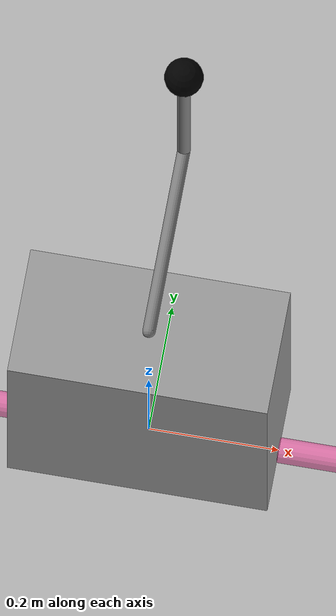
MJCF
<mujoco model="cart_pole">
  <!-- 编译选项：角度使用弧度制 -->
  <compiler angle="radian" coordinate="local" meshdir="."/>

  <!-- 物理选项：重力向下 (沿Z轴负方向) -->
  <option gravity="0 0 -9.81" timestep="0.001" integrator="implicitfast"/>

<asset>
<!--  skybox 直接控制天空  -->
<texture type="skybox" builtin="gradient" rgb1="1 1 1" rgb2="0.6 0.8 1" width="256" height="256"/>
<texture name="plane" type="2d" builtin="checker" rgb1=".1 .1 .1" rgb2=".9 .9 .9" width="512" height="512" mark="cross" markrgb=".8 .8 .8"/>
<material name="plane" reflectance="0.3" texture="plane" texrepeat="1 1" texuniform="true"/>
</asset>

  <!-- 默认属性设置 -->
  <default>
    <!-- 设置关节阻尼，模拟摩擦 -->
    <joint damping="0.001"/>
    <!-- 默认几何体属性 -->
    <geom rgba="0.7 0.7 0.7 1"/>
  </default>

  <!-- 视觉资源 -->
  <visual>
    <headlight ambient="0.4 0.4 0.4" diffuse="0.8 0.8 0.8" specular="0.1 0.1 0.1"/>
    <map znear="0.02"/>
  </visual>

  <worldbody>
    <!-- 地面 -->
    <light pos="0 0 3" dir="0 0 -1" directional="true"/>
    <geom name="floor" pos="0 0 0" size="0 0 .25" type="plane" material="plane" condim="3" friction="0.01 0.01 0.01"/>

    <!-- 导轨视觉辅助线 (可选，为了看清X轴运动轨迹) -->
    <site name="rail" type="capsule" fromto="-500 0 0 500 0 0" size="0.02" rgba="1 0.4 0.7 0.7"/>

    <!-- 小车 (Cart) - 对应质量 M -->
    <!-- pos="0 0 0.1" 是为了让小车刚好浮在地面上方 -->
    <body name="cart" pos="0 0 0.2">
      <!-- 移动关节：沿X轴滑动，代替轮子 -->
      <joint name="slider" type="slide" axis="1 0 0" limited="true" range="-50 50"/>

      <!-- 小车实体：长方体 长0.4 0.2  高0.1-->
      <geom name="cart_geom" type="box" size="0.2 0.1 0.2" rgba="0.6 0.6 0.6 1" mass="0.5"/>
      <body name ="fixed" pos="0 0 0.2">
       <geom name="fixcap" type="capsule" fromto="0 0 0 0 0.3 0" size="0.01" rgba="0.5 0.5 0.5 1" mass="0.01"/>
      <!-- 倒立摆系统 (Pole) -->
      <!-- 安装在小车顶部中心 (0, 0, 0.05) -->
      <body name="pole" pos="0 0.3 0">
        <!-- 旋转关节：绕Y轴旋转 (在XZ平面内摆动) -->
        <joint name="hinge"  type="hinge" axis="0 1 0" damping="0.001" range="-3.14 3.14"/>
        <!-- 连杆 (Rod) - 长度 l -->
        <!-- 使用 fromto 定义起点(关节处)到终点(球心) -->
        <!-- 质量设得很小，符合"连杆质量尽量小"的要求 -->
        <geom name="rod_geom" type="capsule" fromto="0 0 0 0 0 0.3" size="0.01" rgba="0.5 0.5 0.5 1" mass="0.01"/>
        <!-- 质点球 (Mass m) -->
        <!-- 位置在连杆末端 -->
        <body name="mass_sphere" pos="0 0 0.3">
            <geom name="m_geom" type="sphere" size="0.03" rgba="0 0 0 1" mass="0.5"/>
        </body>
        </body>
      </body>
    </body>
  </worldbody>

  <!-- 执行器 (Actuator) -->
  <actuator>
    <!-- 施加在滑块上的力 F -->
    <!-- ctrlrange限制输入的力的大小 -->
    <motor name="slide_motor" joint="slider" ctrlrange="-5000 5000"/>
  </actuator>

</mujoco>
